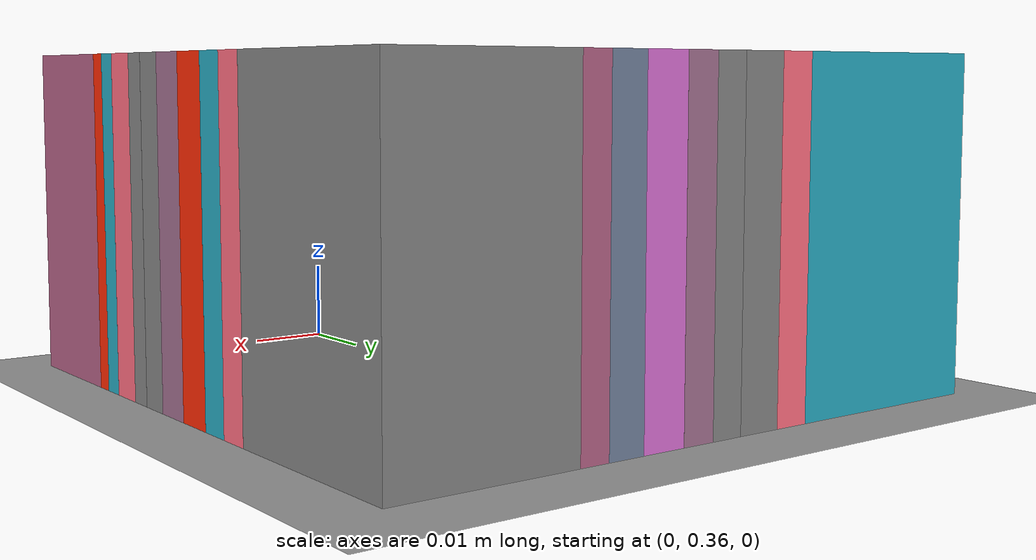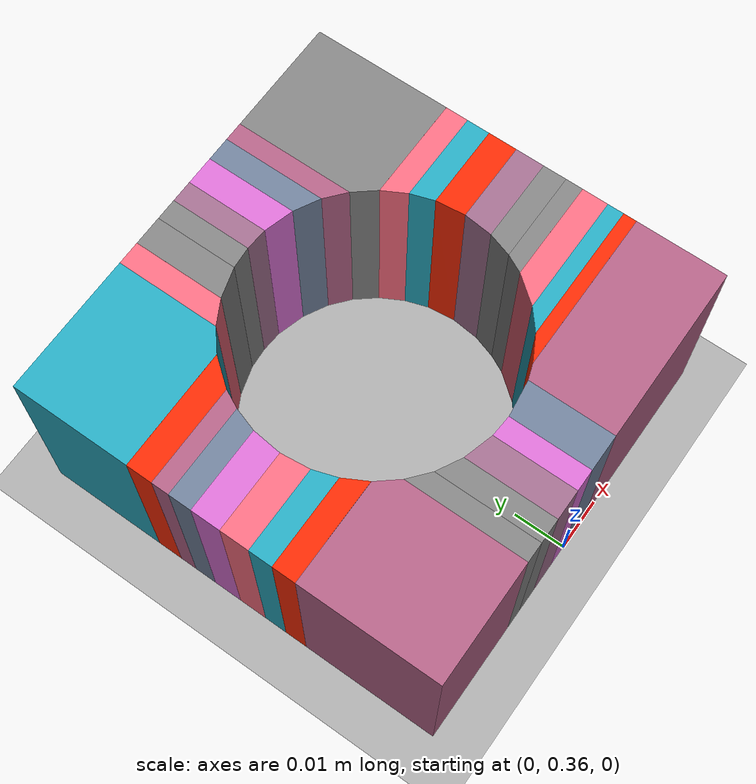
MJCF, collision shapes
<mujoco model="fr3">
  <compiler angle="radian" meshdir=".."/>

  <option integrator="implicitfast"/>

  <default>
    <default class="fr3">
      <joint armature="0.1" damping="1"/>
      <position inheritrange="1"/>
      <default class="visual">
        <geom type="mesh" group="2" contype="0" conaffinity="0"/>
      </default>
      <default class="collision">
        <geom type="mesh" group="3" mass="0" density="0"/>
      </default>
      <site size="0.001" rgba="0.5 0.5 0.5 0.3" group="4"/>
    </default>
  </default>

  <asset>
    <material name="black" rgba=".2 .2 .2 1"/>
    <material name="white" rgba="1 1 1 1"/>
    <material name="red" rgba="1 0.072272 0.039546 1"/>
    <material name="gray" rgba="0.863156 0.863156 0.863157 1"/>
    <material name="button_green" rgba="0.102241 0.571125 0.102242 1"/>
    <material name="button_red" rgba="0.520996 0.008023 0.013702 1"/>
    <material name="button_blue" rgba="0.024157 0.445201 0.737911 1"/>

    <mesh file="./robots/panda/link0_0.obj"/>
    <mesh file="./robots/panda/link0_1.obj"/>
    <mesh file="./robots/panda/link0_2.obj"/>
    <mesh file="./robots/panda/link0_3.obj"/>
    <mesh file="./robots/panda/link0_4.obj"/>
    <mesh file="./robots/panda/link0_5.obj"/>
    <mesh file="./robots/panda/link0_6.obj"/>
    <mesh file="./robots/panda/link1.obj"/>
    <mesh file="./robots/panda/link2.obj"/>
    <mesh file="./robots/panda/link3_0.obj"/>
    <mesh file="./robots/panda/link3_1.obj"/>
    <mesh file="./robots/panda/link4_0.obj"/>
    <mesh file="./robots/panda/link4_1.obj"/>
    <mesh file="./robots/panda/link5_0.obj"/>
    <mesh file="./robots/panda/link5_1.obj"/>
    <mesh file="./robots/panda/link5_2.obj"/>
    <mesh file="./robots/panda/link6_0.obj"/>
    <mesh file="./robots/panda/link6_1.obj"/>
    <mesh file="./robots/panda/link6_2.obj"/>
    <mesh file="./robots/panda/link6_3.obj"/>
    <mesh file="./robots/panda/link6_4.obj"/>
    <mesh file="./robots/panda/link6_5.obj"/>
    <mesh file="./robots/panda/link6_6.obj"/>
    <mesh file="./robots/panda/link6_7.obj"/>
    <mesh file="./robots/panda/link7_0.obj"/>
    <mesh file="./robots/panda/link7_1.obj"/>
    <mesh file="./robots/panda/link7_2.obj"/>
    <mesh file="./robots/panda/link7_3.obj"/>

    <mesh name="link0_coll" file="./robots/panda/link0.stl"/>
    <mesh name="link1_coll" file="./robots/panda/link1.stl"/>
    <mesh name="link2_coll" file="./robots/panda/link2.stl"/>
    <mesh name="link3_coll" file="./robots/panda/link3.stl"/>
    <mesh name="link4_coll" file="./robots/panda/link4.stl"/>
    <mesh name="link5_coll" file="./robots/panda/link5.stl"/>
    <mesh name="link6_coll" file="./robots/panda/link6.stl"/>
    <mesh name="link7_coll" file="./robots/panda/link7.stl"/>

    <mesh name="holesim" file="./objects/peginhole/holesim.stl"/>
    <mesh name="geom0" file="./objects/peginhole/geometry_0.obj"/>
    <mesh name="geom1" file="./objects/peginhole/geometry_1.obj"/>
    <mesh name="geom2" file="./objects/peginhole/geometry_2.obj"/>
    <mesh name="geom3" file="./objects/peginhole/geometry_3.obj"/>
    <mesh name="geom4" file="./objects/peginhole/geometry_4.obj"/>
    <mesh name="geom5" file="./objects/peginhole/geometry_5.obj"/>
    <mesh name="geom6" file="./objects/peginhole/geometry_6.obj"/>
    <mesh name="geom7" file="./objects/peginhole/geometry_7.obj"/>
    <mesh name="geom8" file="./objects/peginhole/geometry_8.obj"/>
    <mesh name="geom9" file="./objects/peginhole/geometry_9.obj"/>
    <mesh name="geom10" file="./objects/peginhole/geometry_10.obj"/>
    <mesh name="geom11" file="./objects/peginhole/geometry_11.obj"/>
    <mesh name="geom12" file="./objects/peginhole/geometry_12.obj"/>
    <mesh name="geom13" file="./objects/peginhole/geometry_13.obj"/>
    <mesh name="geom14" file="./objects/peginhole/geometry_14.obj"/>
    <mesh name="geom15" file="./objects/peginhole/geometry_15.obj"/>
    <mesh name="geom16" file="./objects/peginhole/geometry_16.obj"/>
    <mesh name="geom17" file="./objects/peginhole/geometry_17.obj"/>
    <mesh name="geom18" file="./objects/peginhole/geometry_18.obj"/>
    <mesh name="geom19" file="./objects/peginhole/geometry_19.obj"/>
    <mesh name="geom20" file="./objects/peginhole/geometry_20.obj"/>
    <mesh name="geom21" file="./objects/peginhole/geometry_21.obj"/>
    <mesh name="geom22" file="./objects/peginhole/geometry_22.obj"/>
    <mesh name="geom23" file="./objects/peginhole/geometry_23.obj"/>
    <mesh name="geom24" file="./objects/peginhole/geometry_24.obj"/>
    <mesh name="geom25" file="./objects/peginhole/geometry_25.obj"/>
    <mesh name="geom26" file="./objects/peginhole/geometry_26.obj"/>
    <mesh name="geom27" file="./objects/peginhole/geometry_27.obj"/>
    <mesh name="geom28" file="./objects/peginhole/geometry_28.obj"/>
    <mesh name="geom29" file="./objects/peginhole/geometry_29.obj"/>
    <mesh name="geom30" file="./objects/peginhole/geometry_30.obj"/>
    <mesh name="geom31" file="./objects/peginhole/geometry_31.obj"/>

    <texture name="tex_ground" type="2d" builtin="checker" width="512" height="512" />
    <material name="groundplane" texture="tex_ground" texrepeat="5 5" reflectance="0.2" />
  </asset>

  <worldbody>
    <body name="base" childclass="fr3">
      <body name="fr3_link0">
        <body name="fr3_link1" pos="0 0 0.333">
          <inertial pos="4.128e-07 -0.0181251 -0.0386036" quat="0.998098 -0.0605364 0.00380499 0.0110109" mass="2.92747"
            diaginertia="0.0239286 0.0227246 0.00610634"/>
          <joint name="fr3_joint1" axis="0 0 1" range="-2.7437 2.7437" actuatorfrcrange="-87 87" damping = "0.01"/>
          <body name="fr3_link2" quat="1 -1 0 0">
            <inertial pos="0.00318289 -0.0743222 0.00881461" quat="0.502599 0.584437 -0.465998 0.434366" mass="2.93554"
              diaginertia="0.0629567 0.0411924 0.0246371"/>
            <joint name="fr3_joint2" axis="0 0 1" range="-1.7837 1.7837" actuatorfrcrange="-87 87" damping = "0.01"/>
            <body name="fr3_link3" pos="0 -0.316 0" quat="1 1 0 0">
              <inertial pos="0.0407016 -0.00482006 -0.0289731" quat="0.921025 -0.244161 0.155272 0.260745" mass="2.2449"
                diaginertia="0.0267409 0.0189869 0.0171587"/>
              <joint name="fr3_joint3" axis="0 0 1" range="-2.9007 2.9007" actuatorfrcrange="-87 87" damping = "0.01"/>
              <body name="fr3_link4" pos="0.0825 0 0" quat="1 1 0 0">
                <inertial pos="-0.0459101 0.0630493 -0.00851879" quat="0.438018 0.803311 0.00937812 0.403414"
                  mass="2.6156" diaginertia="0.05139 0.0372717 0.0160047"/>
                <joint name="fr3_joint4" axis="0 0 1" range="-3.0421 -0.1518" actuatorfrcrange="-87 87" damping = "0.01"/>
                <body name="fr3_link5" pos="-0.0825 0.384 0" quat="1 -1 0 0">
                  <inertial pos="-0.00160396 0.0292536 -0.0972966" quat="0.919031 0.125604 0.0751531 -0.366003"
                    mass="2.32712" diaginertia="0.0579335 0.0449144 0.0130634"/>
                  <joint name="fr3_joint5" axis="0 0 1" range="-2.8065 2.8065" actuatorfrcrange="-12 12"
                    armature="0.074" frictionloss="0.763" damping = "0.01"/>
                  <body name="fr3_link6" quat="1 1 0 0">
                    <inertial pos="0.0597131 -0.0410295 -0.0101693" quat="0.621301 0.552665 0.510011 0.220081"
                      mass="1.81704" diaginertia="0.0175039 0.0161123 0.00193529"/>
                    <joint name="fr3_joint6" axis="0 0 1" range="0.5445 4.5169" actuatorfrcrange="-12 12"
                      armature="0.074" frictionloss="0.44" damping = "0.01"/>
                    <body name="fr3_link7" pos="0.088 0 0" quat="1 1 0 0">
                      <inertial pos="0.00452258 0.00862619 -0.0161633" quat="0.727579 0.0978688 -0.24906 0.63168"
                        mass="0.627143" diaginertia="0.000223836 0.000223642 5.64132e-07"/>
                      <joint name="fr3_joint7" axis="0 0 1" range="-3.0159 3.0159" actuatorfrcrange="-12 12"
                        armature="0.074" frictionloss="0.248" damping = "0.01"/>
                      <site name="force_site" pos="0 0 0"/>

                    </body>
                  </body>
                </body>
              </body>
            </body>
          </body>
        </body>
      </body>
    </body>

    <light pos="0 0 1.5" dir="0 0 -1" directional="true" />
    <geom name="floor" size="0 0 0.05" pos="0 0 0" type="plane" material="groundplane" friction="1 0.005 0.0001" />

    <body name="task" pos="0 0.4 0.0" quat="1 0 0 0">
      <geom mesh="holesim" class="visual"/>
      <geom mesh="geom0"  class="collision" friction="0.1 0.1 0.1"/>
      <geom mesh="geom1" rgba="0.9716724395095205 0.4155773668635704 0.4891406227984333 1" class="collision" friction="0.1 0.1 0.1"/>
      <geom mesh="geom2" rgba="0.14830229256383265 0.6475927777174105 0.7338673709396254 1" class="collision" friction="0.1 0.1 0.1"/>
      <geom mesh="geom3" rgba="0.9669567561504457 0.1597578128209678 0.014474842421785983 1" class="collision" friction="0.1 0.1 0.1"/>
      <geom mesh="geom4" rgba="0.6799236025959631 0.3699565607110832 0.5072143585472161 1" class="collision" friction="0.1 0.1 0.1"/>
      <geom mesh="geom5" rgba="0.4268029638925618 0.48928493834570574 0.5899333271522715 1" class="collision" friction="0.1 0.1 0.1"/>
      <geom mesh="geom6" rgba="0.8260291399072678 0.4209205902022757 0.8043892236206673 1" class="collision" friction="0.1 0.1 0.1"/>
      <geom mesh="geom7" rgba="0.6130379479462504 0.42045031701196356 0.540917958831619 1" class="collision" friction="0.1 0.1 0.1"/>
      <geom mesh="geom8"  class="collision"/>
      <geom mesh="geom9"  class="collision"/>
      <geom mesh="geom10" rgba="0.9716724395095205 0.4155773668635704 0.4891406227984333 1" class="collision" friction="0.1 0.1 0.1"/>
      <geom mesh="geom11" rgba="0.14830229256383265 0.6475927777174105 0.7338673709396254 1" class="collision" friction="0.1 0.1 0.1"/>
      <geom mesh="geom12" rgba="0.9669567561504457 0.1597578128209678 0.014474842421785983 1" class="collision" friction="0.1 0.1 0.1"/>
      <geom mesh="geom13" rgba="0.6799236025959631 0.3699565607110832 0.5072143585472161 1" class="collision" friction="0.1 0.1 0.1"/>
      <geom mesh="geom14" rgba="0.4268029638925618 0.48928493834570574 0.5899333271522715 1" class="collision" friction="0.1 0.1 0.1"/>
      <geom mesh="geom15" rgba="0.8260291399072678 0.4209205902022757 0.8043892236206673 1" class="collision" friction="0.1 0.1 0.1"/>
      <geom mesh="geom16" rgba="0.6130379479462504 0.42045031701196356 0.540917958831619 1" class="collision" friction="0.1 0.1 0.1"/>
      <geom mesh="geom17"  class="collision"/>
      <geom mesh="geom18"  class="collision"/>
      <geom mesh="geom19" rgba="0.9716724395095205 0.4155773668635704 0.4891406227984333 1" class="collision" friction="0.1 0.1 0.1"/>
      <geom mesh="geom20" rgba="0.14830229256383265 0.6475927777174105 0.7338673709396254 1" class="collision" friction="0.1 0.1 0.1"/>
      <geom mesh="geom21" rgba="0.9669567561504457 0.1597578128209678 0.014474842421785983 1" class="collision" friction="0.1 0.1 0.1"/>
      <geom mesh="geom22" rgba="0.6799236025959631 0.3699565607110832 0.5072143585472161 1" class="collision" friction="0.1 0.1 0.1"/>
      <geom mesh="geom23" rgba="0.4268029638925618 0.48928493834570574 0.5899333271522715 1" class="collision" friction="0.1 0.1 0.1"/>
      <geom mesh="geom24" rgba="0.8260291399072678 0.4209205902022757 0.8043892236206673 1" class="collision" friction="0.1 0.1 0.1"/>
      <geom mesh="geom25" rgba="0.6130379479462504 0.42045031701196356 0.540917958831619 1" class="collision" friction="0.1 0.1 0.1"/>
      <geom mesh="geom26"  class="collision"/>
      <geom mesh="geom27"  class="collision"/>
      <geom mesh="geom28" rgba="0.9716724395095205 0.4155773668635704 0.4891406227984333 1" class="collision" friction="0.1 0.1 0.1"/>
      <geom mesh="geom29" rgba="0.14830229256383265 0.6475927777174105 0.7338673709396254 1" class="collision" friction="0.1 0.1 0.1"/>
      <geom mesh="geom30" rgba="0.9669567561504457 0.1597578128209678 0.014474842421785983 1" class="collision" friction="0.1 0.1 0.1"/>
      <geom mesh="geom31" rgba="0.6799236025959631 0.3699565607110832 0.5072143585472161 1" class="collision" friction="0.1 0.1 0.1"/>
    </body>

  </worldbody>

  <actuator>
    <motor class="fr3" name="fr3_joint1" joint="fr3_joint1" ctrlrange="-87 87"/>
    <motor class="fr3" name="fr3_joint2" joint="fr3_joint2" ctrlrange="-87 87"/>
    <motor class="fr3" name="fr3_joint3" joint="fr3_joint3" ctrlrange="-87 87"/>
    <motor class="fr3" name="fr3_joint4" joint="fr3_joint4" ctrlrange="-87 87"/>
    <motor class="fr3" name="fr3_joint5" joint="fr3_joint5" ctrlrange="-12 12"/>
    <motor class="fr3" name="fr3_joint6" joint="fr3_joint6" ctrlrange="-12 12"/>
    <motor class="fr3" name="fr3_joint7" joint="fr3_joint7" ctrlrange="-12 12"/>
  </actuator>

  <sensor>
    <force name="force_sensor" site="force_site"/>
    <torque name="torque_sensor" site="force_site"/>
  </sensor>

  <keyframe>
    <key name="home" qpos="0.746 -0.38 0.85 -2.71 0.48 2.385 1.1696"/>
  </keyframe>
</mujoco>
